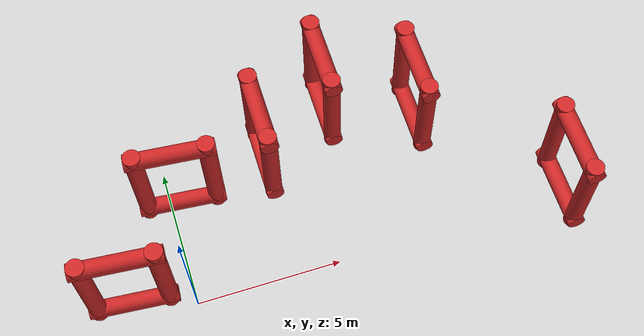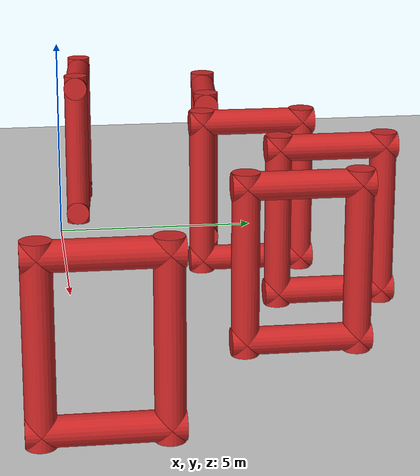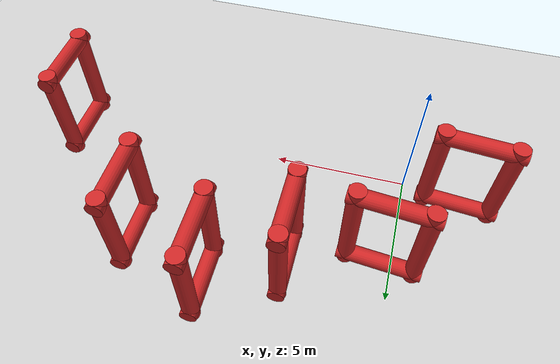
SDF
<sdf version="1.7">
 <world name="default">
  <light name="sun" type="directional">
   <pose>0 0 10 0 -0 0</pose>
   <diffuse>0.8 0.8 0.8 1</diffuse>
   <specular>0.2 0.2 0.2 1</specular>
   <attenuation>
    <range>1000</range>
    <constant>0.9</constant>
    <linear>0.01</linear>
    <quadratic>0.001</quadratic>
   </attenuation>
   <direction>-0.5 0.1 -0.9</direction>
   <spot><inner_angle>0</inner_angle><outer_angle>0</outer_angle><falloff>0</falloff></spot>
  </light>
  <model name="ground_plane">
   <static>1</static>
   <link name="link">
    <collision name="collision">
     <geometry><plane><normal>0 0 1</normal><size>100 100</size></plane></geometry>
     <surface><friction><ode><mu>100</mu><mu2>50</mu2></ode></friction></surface>
    </collision>
    <visual name="visual">
     <cast_shadows>0</cast_shadows>
     <geometry><plane><normal>0 0 1</normal><size>100 100</size></plane></geometry>
     <material>
      <script><uri>file://media/materials/scripts/gazebo.material</uri><name>Gazebo/Grey</name></script>
     </material>
    </visual>
   </link>
  </model>
  <gravity>0 0 -9.8</gravity>
  <magnetic_field>6e-06 2.3e-05 -4.2e-05</magnetic_field>
  <atmosphere type="adiabatic"/>
  <physics type="ode">
   <max_step_size>0.001</max_step_size>
   <real_time_factor>1</real_time_factor>
   <real_time_update_rate>1000</real_time_update_rate>
  </physics>
  <scene><ambient>0.4 0.4 0.4 1</ambient><background>0.7 0.7 0.7 1</background><shadows>1</shadows></scene>
  <spherical_coordinates>
   <surface_model>EARTH_WGS84</surface_model>
   <latitude_deg>0</latitude_deg>
   <longitude_deg>0</longitude_deg>
   <elevation>0</elevation>
   <heading_deg>0</heading_deg>
  </spherical_coordinates>
  <model name="gate_1">
   <link name="base">
    <inertial>
     <pose>-1.2 0 0 0 -0 0</pose>
     <mass>4</mass>
     <inertia><ixx>6.07667</ixx><ixy>0</ixy><ixz>0</ixz><iyy>8.89417</iyy><iyz>0</iyz><izz>2.98417</izz></inertia>
    </inertial>
    <collision name="base_collision">
     <geometry><cylinder><length>4</length><radius>0.3</radius></cylinder></geometry>
     <surface>
      <contact><ode><kp>100000</kp><kd>100000</kd></ode></contact>
      <friction><ode><mu>0.1</mu><mu2>0.1</mu2><fdir1>1 0 0</fdir1></ode></friction>
     </surface>
    </collision>
    <collision name="base_fixed_joint_lump__buttom_1_collision_1">
     <pose>-1.2 0 -1.7 3.14159 1.57079 3.14159</pose>
     <geometry><cylinder><length>3</length><radius>0.3</radius></cylinder></geometry>
     <surface>
      <contact><ode><kp>100000</kp><kd>100000</kd></ode></contact>
      <friction><ode><mu>0.1</mu><mu2>0.1</mu2><fdir1>1 0 0</fdir1></ode></friction>
     </surface>
    </collision>
    <collision name="base_fixed_joint_lump__left_1_collision_2">
     <pose>-2.4 0 0 0 -0 0</pose>
     <geometry><cylinder><length>4</length><radius>0.3</radius></cylinder></geometry>
     <surface>
      <contact><ode><kp>100000</kp><kd>100000</kd></ode></contact>
      <friction><ode><mu>0.1</mu><mu2>0.1</mu2><fdir1>1 0 0</fdir1></ode></friction>
     </surface>
    </collision>
    <collision name="base_fixed_joint_lump__upper_collision_3">
     <pose>-1.2 0 1.7 3.14159 1.57079 3.14159</pose>
     <geometry><cylinder><length>3</length><radius>0.3</radius></cylinder></geometry>
     <surface>
      <contact><ode><kp>100000</kp><kd>100000</kd></ode></contact>
      <friction><ode><mu>0.1</mu><mu2>0.1</mu2><fdir1>1 0 0</fdir1></ode></friction>
     </surface>
    </collision>
    <visual name="base_visual">
     <geometry><cylinder><length>4</length><radius>0.3</radius></cylinder></geometry>
     <material>
      <script><name>Gazebo/Red</name><uri>file://media/materials/scripts/gazebo.material</uri></script>
     </material>
    </visual>
    <visual name="base_fixed_joint_lump__buttom_1_visual_1">
     <pose>-1.2 0 -1.7 3.14159 1.57079 3.14159</pose>
     <geometry><cylinder><length>3</length><radius>0.3</radius></cylinder></geometry>
     <material>
      <script><name>Gazebo/Red</name><uri>file://media/materials/scripts/gazebo.material</uri></script>
     </material>
    </visual>
    <visual name="base_fixed_joint_lump__left_1_visual_2">
     <pose>-2.4 0 0 0 -0 0</pose>
     <geometry><cylinder><length>4</length><radius>0.3</radius></cylinder></geometry>
     <material>
      <script><name>Gazebo/Red</name><uri>file://media/materials/scripts/gazebo.material</uri></script>
     </material>
    </visual>
    <visual name="base_fixed_joint_lump__upper_visual_3">
     <pose>-1.2 0 1.7 3.14159 1.57079 3.14159</pose>
     <geometry><cylinder><length>3</length><radius>0.3</radius></cylinder></geometry>
     <material>
      <script><name>Gazebo/Red</name><uri>file://media/materials/scripts/gazebo.material</uri></script>
     </material>
    </visual>
    <gravity>0</gravity>
   </link>
   <pose>1.64222 3.64313 2.00062 0.000705 0.000588 -0.088378</pose>
  </model>
  <model name="gate_1_clone">
   <link name="base">
    <inertial>
     <pose>-1.2 0 0 0 -0 0</pose>
     <mass>4</mass>
     <inertia><ixx>6.07667</ixx><ixy>0</ixy><ixz>0</ixz><iyy>8.89417</iyy><iyz>0</iyz><izz>2.98417</izz></inertia>
    </inertial>
    <collision name="base_collision">
     <geometry><cylinder><length>4</length><radius>0.3</radius></cylinder></geometry>
     <surface>
      <contact><ode><kp>100000</kp><kd>100000</kd></ode></contact>
      <friction><ode><mu>0.1</mu><mu2>0.1</mu2><fdir1>1 0 0</fdir1></ode></friction>
     </surface>
    </collision>
    <collision name="base_fixed_joint_lump__buttom_1_collision_1">
     <pose>-1.2 0 -1.7 3.14159 1.57079 3.14159</pose>
     <geometry><cylinder><length>3</length><radius>0.3</radius></cylinder></geometry>
     <surface>
      <contact><ode><kp>100000</kp><kd>100000</kd></ode></contact>
      <friction><ode><mu>0.1</mu><mu2>0.1</mu2><fdir1>1 0 0</fdir1></ode></friction>
     </surface>
    </collision>
    <collision name="base_fixed_joint_lump__left_1_collision_2">
     <pose>-2.4 0 0 0 -0 0</pose>
     <geometry><cylinder><length>4</length><radius>0.3</radius></cylinder></geometry>
     <surface>
      <contact><ode><kp>100000</kp><kd>100000</kd></ode></contact>
      <friction><ode><mu>0.1</mu><mu2>0.1</mu2><fdir1>1 0 0</fdir1></ode></friction>
     </surface>
    </collision>
    <collision name="base_fixed_joint_lump__upper_collision_3">
     <pose>-1.2 0 1.7 3.14159 1.57079 3.14159</pose>
     <geometry><cylinder><length>3</length><radius>0.3</radius></cylinder></geometry>
     <surface>
      <contact><ode><kp>100000</kp><kd>100000</kd></ode></contact>
      <friction><ode><mu>0.1</mu><mu2>0.1</mu2><fdir1>1 0 0</fdir1></ode></friction>
     </surface>
    </collision>
    <visual name="base_visual">
     <geometry><cylinder><length>4</length><radius>0.3</radius></cylinder></geometry>
     <material>
      <script><name>Gazebo/Red</name><uri>file://media/materials/scripts/gazebo.material</uri></script>
     </material>
    </visual>
    <visual name="base_fixed_joint_lump__buttom_1_visual_1">
     <pose>-1.2 0 -1.7 3.14159 1.57079 3.14159</pose>
     <geometry><cylinder><length>3</length><radius>0.3</radius></cylinder></geometry>
     <material>
      <script><name>Gazebo/Red</name><uri>file://media/materials/scripts/gazebo.material</uri></script>
     </material>
    </visual>
    <visual name="base_fixed_joint_lump__left_1_visual_2">
     <pose>-2.4 0 0 0 -0 0</pose>
     <geometry><cylinder><length>4</length><radius>0.3</radius></cylinder></geometry>
     <material>
      <script><name>Gazebo/Red</name><uri>file://media/materials/scripts/gazebo.material</uri></script>
     </material>
    </visual>
    <visual name="base_fixed_joint_lump__upper_visual_3">
     <pose>-1.2 0 1.7 3.14159 1.57079 3.14159</pose>
     <geometry><cylinder><length>3</length><radius>0.3</radius></cylinder></geometry>
     <material>
      <script><name>Gazebo/Red</name><uri>file://media/materials/scripts/gazebo.material</uri></script>
     </material>
    </visual>
    <gravity>0</gravity>
   </link>
   <pose>-0.8 0.5 2.00101 -0.000859 -0.000189 -0.084831</pose>
  </model>
  <model name="gate_1_clone_0">
   <link name="base">
    <inertial>
     <pose>-1.2 0 0 0 -0 0</pose>
     <mass>4</mass>
     <inertia><ixx>6.07667</ixx><ixy>0</ixy><ixz>0</ixz><iyy>8.89417</iyy><iyz>0</iyz><izz>2.98417</izz></inertia>
    </inertial>
    <collision name="base_collision">
     <geometry><cylinder><length>4</length><radius>0.3</radius></cylinder></geometry>
     <surface>
      <contact><ode><kp>100000</kp><kd>100000</kd></ode></contact>
      <friction><ode><mu>0.1</mu><mu2>0.1</mu2><fdir1>1 0 0</fdir1></ode></friction>
     </surface>
    </collision>
    <collision name="base_fixed_joint_lump__buttom_1_collision_1">
     <pose>-1.2 0 -1.7 3.14159 1.57079 3.14159</pose>
     <geometry><cylinder><length>3</length><radius>0.3</radius></cylinder></geometry>
     <surface>
      <contact><ode><kp>100000</kp><kd>100000</kd></ode></contact>
      <friction><ode><mu>0.1</mu><mu2>0.1</mu2><fdir1>1 0 0</fdir1></ode></friction>
     </surface>
    </collision>
    <collision name="base_fixed_joint_lump__left_1_collision_2">
     <pose>-2.4 0 0 0 -0 0</pose>
     <geometry><cylinder><length>4</length><radius>0.3</radius></cylinder></geometry>
     <surface>
      <contact><ode><kp>100000</kp><kd>100000</kd></ode></contact>
      <friction><ode><mu>0.1</mu><mu2>0.1</mu2><fdir1>1 0 0</fdir1></ode></friction>
     </surface>
    </collision>
    <collision name="base_fixed_joint_lump__upper_collision_3">
     <pose>-1.2 0 1.7 3.14159 1.57079 3.14159</pose>
     <geometry><cylinder><length>3</length><radius>0.3</radius></cylinder></geometry>
     <surface>
      <contact><ode><kp>100000</kp><kd>100000</kd></ode></contact>
      <friction><ode><mu>0.1</mu><mu2>0.1</mu2><fdir1>1 0 0</fdir1></ode></friction>
     </surface>
    </collision>
    <visual name="base_visual">
     <geometry><cylinder><length>4</length><radius>0.3</radius></cylinder></geometry>
     <material>
      <script><name>Gazebo/Red</name><uri>file://media/materials/scripts/gazebo.material</uri></script>
     </material>
    </visual>
    <visual name="base_fixed_joint_lump__buttom_1_visual_1">
     <pose>-1.2 0 -1.7 3.14159 1.57079 3.14159</pose>
     <geometry><cylinder><length>3</length><radius>0.3</radius></cylinder></geometry>
     <material>
      <script><name>Gazebo/Red</name><uri>file://media/materials/scripts/gazebo.material</uri></script>
     </material>
    </visual>
    <visual name="base_fixed_joint_lump__left_1_visual_2">
     <pose>-2.4 0 0 0 -0 0</pose>
     <geometry><cylinder><length>4</length><radius>0.3</radius></cylinder></geometry>
     <material>
      <script><name>Gazebo/Red</name><uri>file://media/materials/scripts/gazebo.material</uri></script>
     </material>
    </visual>
    <visual name="base_fixed_joint_lump__upper_visual_3">
     <pose>-1.2 0 1.7 3.14159 1.57079 3.14159</pose>
     <geometry><cylinder><length>3</length><radius>0.3</radius></cylinder></geometry>
     <material>
      <script><name>Gazebo/Red</name><uri>file://media/materials/scripts/gazebo.material</uri></script>
     </material>
    </visual>
    <gravity>0</gravity>
   </link>
   <pose>3.6 5.69 2.00062 0.000705 0.000588 1.57</pose>
  </model>
  <model name="gate_1_clone_0_clone">
   <link name="base">
    <inertial>
     <pose>-1.2 0 0 0 -0 0</pose>
     <mass>4</mass>
     <inertia><ixx>6.07667</ixx><ixy>0</ixy><ixz>0</ixz><iyy>8.89417</iyy><iyz>0</iyz><izz>2.98417</izz></inertia>
    </inertial>
    <collision name="base_collision">
     <geometry><cylinder><length>4</length><radius>0.3</radius></cylinder></geometry>
     <surface>
      <contact><ode><kp>100000</kp><kd>100000</kd></ode></contact>
      <friction><ode><mu>0.1</mu><mu2>0.1</mu2><fdir1>1 0 0</fdir1></ode></friction>
     </surface>
    </collision>
    <collision name="base_fixed_joint_lump__buttom_1_collision_1">
     <pose>-1.2 0 -1.7 3.14159 1.57079 3.14159</pose>
     <geometry><cylinder><length>3</length><radius>0.3</radius></cylinder></geometry>
     <surface>
      <contact><ode><kp>100000</kp><kd>100000</kd></ode></contact>
      <friction><ode><mu>0.1</mu><mu2>0.1</mu2><fdir1>1 0 0</fdir1></ode></friction>
     </surface>
    </collision>
    <collision name="base_fixed_joint_lump__left_1_collision_2">
     <pose>-2.4 0 0 0 -0 0</pose>
     <geometry><cylinder><length>4</length><radius>0.3</radius></cylinder></geometry>
     <surface>
      <contact><ode><kp>100000</kp><kd>100000</kd></ode></contact>
      <friction><ode><mu>0.1</mu><mu2>0.1</mu2><fdir1>1 0 0</fdir1></ode></friction>
     </surface>
    </collision>
    <collision name="base_fixed_joint_lump__upper_collision_3">
     <pose>-1.2 0 1.7 3.14159 1.57079 3.14159</pose>
     <geometry><cylinder><length>3</length><radius>0.3</radius></cylinder></geometry>
     <surface>
      <contact><ode><kp>100000</kp><kd>100000</kd></ode></contact>
      <friction><ode><mu>0.1</mu><mu2>0.1</mu2><fdir1>1 0 0</fdir1></ode></friction>
     </surface>
    </collision>
    <visual name="base_visual">
     <geometry><cylinder><length>4</length><radius>0.3</radius></cylinder></geometry>
     <material>
      <script><name>Gazebo/Red</name><uri>file://media/materials/scripts/gazebo.material</uri></script>
     </material>
    </visual>
    <visual name="base_fixed_joint_lump__buttom_1_visual_1">
     <pose>-1.2 0 -1.7 3.14159 1.57079 3.14159</pose>
     <geometry><cylinder><length>3</length><radius>0.3</radius></cylinder></geometry>
     <material>
      <script><name>Gazebo/Red</name><uri>file://media/materials/scripts/gazebo.material</uri></script>
     </material>
    </visual>
    <visual name="base_fixed_joint_lump__left_1_visual_2">
     <pose>-2.4 0 0 0 -0 0</pose>
     <geometry><cylinder><length>4</length><radius>0.3</radius></cylinder></geometry>
     <material>
      <script><name>Gazebo/Red</name><uri>file://media/materials/scripts/gazebo.material</uri></script>
     </material>
    </visual>
    <visual name="base_fixed_joint_lump__upper_visual_3">
     <pose>-1.2 0 1.7 3.14159 1.57079 3.14159</pose>
     <geometry><cylinder><length>3</length><radius>0.3</radius></cylinder></geometry>
     <material>
      <script><name>Gazebo/Red</name><uri>file://media/materials/scripts/gazebo.material</uri></script>
     </material>
    </visual>
    <gravity>0</gravity>
   </link>
   <pose>6.2 7.1 2.00062 0.000705 0.000587 1.57</pose>
  </model>
  <model name="gate_1_clone_0_clone_clone">
   <link name="base">
    <inertial>
     <pose>-1.2 0 0 0 -0 0</pose>
     <mass>4</mass>
     <inertia><ixx>6.07667</ixx><ixy>0</ixy><ixz>0</ixz><iyy>8.89417</iyy><iyz>0</iyz><izz>2.98417</izz></inertia>
    </inertial>
    <collision name="base_collision">
     <geometry><cylinder><length>4</length><radius>0.3</radius></cylinder></geometry>
     <surface>
      <contact><ode><kp>100000</kp><kd>100000</kd></ode></contact>
      <friction><ode><mu>0.1</mu><mu2>0.1</mu2><fdir1>1 0 0</fdir1></ode></friction>
     </surface>
    </collision>
    <collision name="base_fixed_joint_lump__buttom_1_collision_1">
     <pose>-1.2 0 -1.7 3.14159 1.57079 3.14159</pose>
     <geometry><cylinder><length>3</length><radius>0.3</radius></cylinder></geometry>
     <surface>
      <contact><ode><kp>100000</kp><kd>100000</kd></ode></contact>
      <friction><ode><mu>0.1</mu><mu2>0.1</mu2><fdir1>1 0 0</fdir1></ode></friction>
     </surface>
    </collision>
    <collision name="base_fixed_joint_lump__left_1_collision_2">
     <pose>-2.4 0 0 0 -0 0</pose>
     <geometry><cylinder><length>4</length><radius>0.3</radius></cylinder></geometry>
     <surface>
      <contact><ode><kp>100000</kp><kd>100000</kd></ode></contact>
      <friction><ode><mu>0.1</mu><mu2>0.1</mu2><fdir1>1 0 0</fdir1></ode></friction>
     </surface>
    </collision>
    <collision name="base_fixed_joint_lump__upper_collision_3">
     <pose>-1.2 0 1.7 3.14159 1.57079 3.14159</pose>
     <geometry><cylinder><length>3</length><radius>0.3</radius></cylinder></geometry>
     <surface>
      <contact><ode><kp>100000</kp><kd>100000</kd></ode></contact>
      <friction><ode><mu>0.1</mu><mu2>0.1</mu2><fdir1>1 0 0</fdir1></ode></friction>
     </surface>
    </collision>
    <visual name="base_visual">
     <geometry><cylinder><length>4</length><radius>0.3</radius></cylinder></geometry>
     <material>
      <script><name>Gazebo/Red</name><uri>file://media/materials/scripts/gazebo.material</uri></script>
     </material>
    </visual>
    <visual name="base_fixed_joint_lump__buttom_1_visual_1">
     <pose>-1.2 0 -1.7 3.14159 1.57079 3.14159</pose>
     <geometry><cylinder><length>3</length><radius>0.3</radius></cylinder></geometry>
     <material>
      <script><name>Gazebo/Red</name><uri>file://media/materials/scripts/gazebo.material</uri></script>
     </material>
    </visual>
    <visual name="base_fixed_joint_lump__left_1_visual_2">
     <pose>-2.4 0 0 0 -0 0</pose>
     <geometry><cylinder><length>4</length><radius>0.3</radius></cylinder></geometry>
     <material>
      <script><name>Gazebo/Red</name><uri>file://media/materials/scripts/gazebo.material</uri></script>
     </material>
    </visual>
    <visual name="base_fixed_joint_lump__upper_visual_3">
     <pose>-1.2 0 1.7 3.14159 1.57079 3.14159</pose>
     <geometry><cylinder><length>3</length><radius>0.3</radius></cylinder></geometry>
     <material>
      <script><name>Gazebo/Red</name><uri>file://media/materials/scripts/gazebo.material</uri></script>
     </material>
    </visual>
    <gravity>0</gravity>
   </link>
   <pose>9.2 5.9 2.00062 0.000705 0.000587 1.57</pose>
  </model>
  <model name="gate_1_clone_0_clone_clone_0">
   <link name="base">
    <inertial>
     <pose>-1.2 0 0 0 -0 0</pose>
     <mass>4</mass>
     <inertia><ixx>6.07667</ixx><ixy>0</ixy><ixz>0</ixz><iyy>8.89417</iyy><iyz>0</iyz><izz>2.98417</izz></inertia>
    </inertial>
    <collision name="base_collision">
     <geometry><cylinder><length>4</length><radius>0.3</radius></cylinder></geometry>
     <surface>
      <contact><ode><kp>100000</kp><kd>100000</kd></ode></contact>
      <friction><ode><mu>0.1</mu><mu2>0.1</mu2><fdir1>1 0 0</fdir1></ode></friction>
     </surface>
    </collision>
    <collision name="base_fixed_joint_lump__buttom_1_collision_1">
     <pose>-1.2 0 -1.7 3.14159 1.57079 3.14159</pose>
     <geometry><cylinder><length>3</length><radius>0.3</radius></cylinder></geometry>
     <surface>
      <contact><ode><kp>100000</kp><kd>100000</kd></ode></contact>
      <friction><ode><mu>0.1</mu><mu2>0.1</mu2><fdir1>1 0 0</fdir1></ode></friction>
     </surface>
    </collision>
    <collision name="base_fixed_joint_lump__left_1_collision_2">
     <pose>-2.4 0 0 0 -0 0</pose>
     <geometry><cylinder><length>4</length><radius>0.3</radius></cylinder></geometry>
     <surface>
      <contact><ode><kp>100000</kp><kd>100000</kd></ode></contact>
      <friction><ode><mu>0.1</mu><mu2>0.1</mu2><fdir1>1 0 0</fdir1></ode></friction>
     </surface>
    </collision>
    <collision name="base_fixed_joint_lump__upper_collision_3">
     <pose>-1.2 0 1.7 3.14159 1.57079 3.14159</pose>
     <geometry><cylinder><length>3</length><radius>0.3</radius></cylinder></geometry>
     <surface>
      <contact><ode><kp>100000</kp><kd>100000</kd></ode></contact>
      <friction><ode><mu>0.1</mu><mu2>0.1</mu2><fdir1>1 0 0</fdir1></ode></friction>
     </surface>
    </collision>
    <visual name="base_visual">
     <geometry><cylinder><length>4</length><radius>0.3</radius></cylinder></geometry>
     <material>
      <script><name>Gazebo/Red</name><uri>file://media/materials/scripts/gazebo.material</uri></script>
     </material>
    </visual>
    <visual name="base_fixed_joint_lump__buttom_1_visual_1">
     <pose>-1.2 0 -1.7 3.14159 1.57079 3.14159</pose>
     <geometry><cylinder><length>3</length><radius>0.3</radius></cylinder></geometry>
     <material>
      <script><name>Gazebo/Red</name><uri>file://media/materials/scripts/gazebo.material</uri></script>
     </material>
    </visual>
    <visual name="base_fixed_joint_lump__left_1_visual_2">
     <pose>-2.4 0 0 0 -0 0</pose>
     <geometry><cylinder><length>4</length><radius>0.3</radius></cylinder></geometry>
     <material>
      <script><name>Gazebo/Red</name><uri>file://media/materials/scripts/gazebo.material</uri></script>
     </material>
    </visual>
    <visual name="base_fixed_joint_lump__upper_visual_3">
     <pose>-1.2 0 1.7 3.14159 1.57079 3.14159</pose>
     <geometry><cylinder><length>3</length><radius>0.3</radius></cylinder></geometry>
     <material>
      <script><name>Gazebo/Red</name><uri>file://media/materials/scripts/gazebo.material</uri></script>
     </material>
    </visual>
    <gravity>0</gravity>
   </link>
   <pose>13.2 1.49 2.00062 0.000705 0.000587 1.57</pose>
  </model>
 </world>
</sdf>
